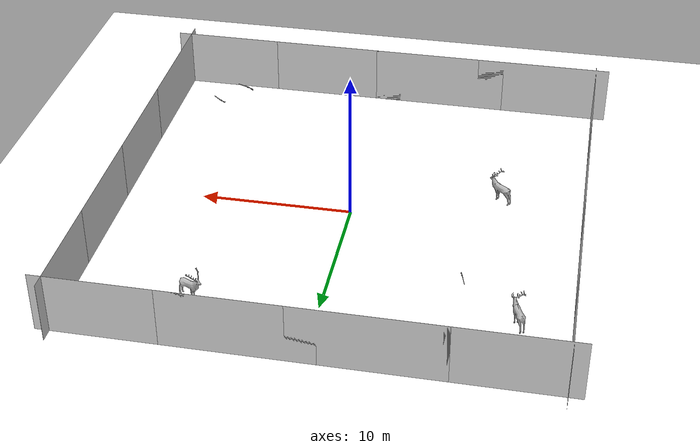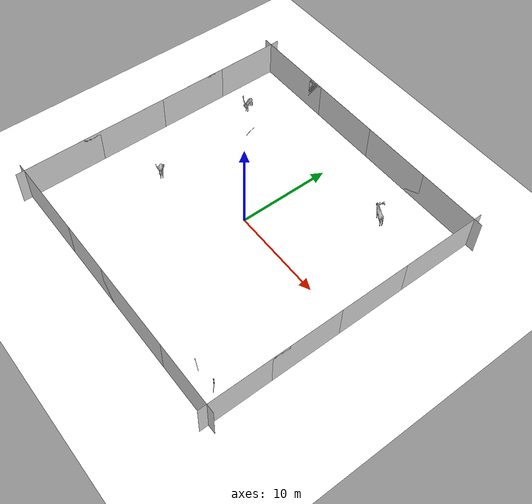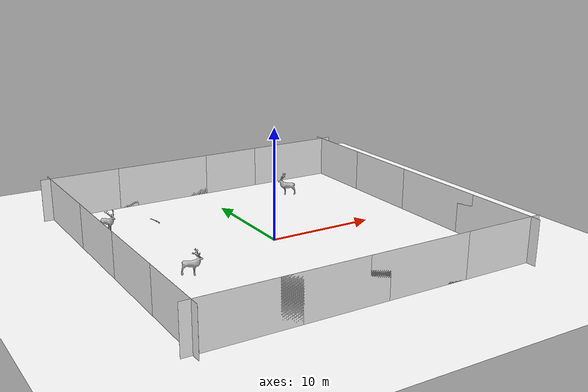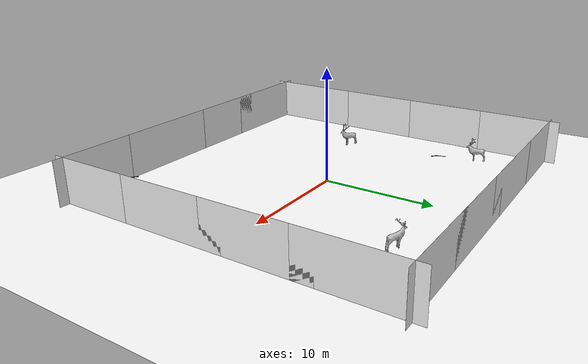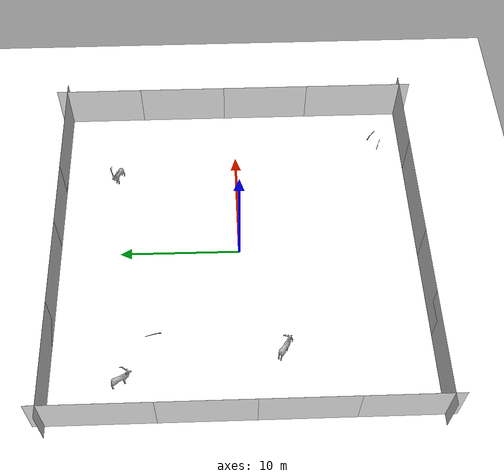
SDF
<sdf version="1.8">
 <world name="world_gen">
  <plugin name="ignition::gazebo::systems::Physics" filename="ignition-gazebo-physics-system"/>
  <plugin name="ignition::gazebo::systems::UserCommands" filename="ignition-gazebo-user-commands-system"/>
  <plugin name="ignition::gazebo::systems::SceneBroadcaster" filename="ignition-gazebo-scene-broadcaster-system"/>
  <plugin name="ignition::gazebo::systems::Contact" filename="ignition-gazebo-contact-system"/>
  <light name="sun" type="directional">
   <cast_shadows>0</cast_shadows>
   <pose>0 0 100 0 0 0</pose>
   <diffuse>0.8 0.8 0.8 1</diffuse>
   <specular>0.8 0.8 0.8 1</specular>
   <direction>-0.5 0.1 -0.9</direction>
   <intensity>5</intensity>
  </light>
  <gravity>0 0 -9.81</gravity>
  <magnetic_field>6e-06 2.3e-05 -4.2e-05</magnetic_field>
  <atmosphere type="adiabatic"/>
  <physics name="default_physics" type="ignored">
   <max_step_size>0.01</max_step_size>
   <real_time_factor>1</real_time_factor>
   <real_time_update_rate>100</real_time_update_rate>
  </physics>
  <scene>
   <ambient>1 1 1 1</ambient>
   <background>0.6 0.8 1.0 1</background>
   <shadows>0</shadows>
   <grid>0</grid>
  </scene>
  <spherical_coordinates>
   <latitude_deg>0.0</latitude_deg>
   <longitude_deg>0.0</longitude_deg>
   <elevation>10.0</elevation>
   <heading_deg>0</heading_deg>
   <surface_model>EARTH_WGS84</surface_model>
  </spherical_coordinates>
  <include>
   <uri>model://gun</uri>
   <name>Gun_1</name>
   <pose>10.4 -12.9 1 0 0 7.48</pose>
   <static>true</static>
  </include>
  <include><uri>model://gun</uri><name>Gun_2</name><pose>-8.2 7 1 0 0 3.41</pose><static>true</static></include>
  <include>
   <uri>model://deer</uri>
   <name>deer_1</name>
   <pose>-9.6 -3.2 0 0 0 4.12</pose>
   <static>true</static>
  </include>
  <include>
   <uri>model://deer</uri>
   <name>deer_2</name>
   <pose>7.9 10.4 0 0 0 1.12</pose>
   <static>true</static>
  </include>
  <include>
   <uri>model://deer</uri>
   <name>deer_3</name>
   <pose>-11.8 9.5 0 0 0 3.57</pose>
   <static>true</static>
  </include>
  <include>
   <uri>model://gun</uri>
   <name>Gun_3</name>
   <pose>12.3 -12.7 0.01 0 1.57 0.85</pose>
   <static>true</static>
  </include>
  <include><uri>model://forest_plane</uri><name>forest_plane0_0</name></include>
  <include>
   <uri>model://forest_wall</uri>
   <name>forest_wall_top_0</name>
   <pose>-11.250 15.000 2.000 1.570796 0 0</pose>
   <static>true</static>
  </include>
  <include>
   <uri>model://forest_wall</uri>
   <name>forest_wall_bottom_0</name>
   <pose>-11.250 -15.000 2.000 1.570796 0 3.141592653589793</pose>
   <static>true</static>
  </include>
  <include>
   <uri>model://forest_wall</uri>
   <name>forest_wall_top_1</name>
   <pose>-3.750 15.000 2.000 1.570796 0 0</pose>
   <static>true</static>
  </include>
  <include>
   <uri>model://forest_wall</uri>
   <name>forest_wall_bottom_1</name>
   <pose>-3.750 -15.000 2.000 1.570796 0 3.141592653589793</pose>
   <static>true</static>
  </include>
  <include>
   <uri>model://forest_wall</uri>
   <name>forest_wall_top_2</name>
   <pose>3.750 15.000 2.000 1.570796 0 0</pose>
   <static>true</static>
  </include>
  <include>
   <uri>model://forest_wall</uri>
   <name>forest_wall_bottom_2</name>
   <pose>3.750 -15.000 2.000 1.570796 0 3.141592653589793</pose>
   <static>true</static>
  </include>
  <include>
   <uri>model://forest_wall</uri>
   <name>forest_wall_top_3</name>
   <pose>11.250 15.000 2.000 1.570796 0 0</pose>
   <static>true</static>
  </include>
  <include>
   <uri>model://forest_wall</uri>
   <name>forest_wall_bottom_3</name>
   <pose>11.250 -15.000 2.000 1.570796 0 3.141592653589793</pose>
   <static>true</static>
  </include>
  <include>
   <uri>model://forest_wall</uri>
   <name>forest_wall_right_0</name>
   <pose>15.000 -11.250 2.000 1.570796 0 -1.570796</pose>
   <static>true</static>
  </include>
  <include>
   <uri>model://forest_wall</uri>
   <name>forest_wall_left_0</name>
   <pose>-15.000 -11.250 2.000 1.570796 0 1.570796</pose>
   <static>true</static>
  </include>
  <include>
   <uri>model://forest_wall</uri>
   <name>forest_wall_right_1</name>
   <pose>15.000 -3.750 2.000 1.570796 0 -1.570796</pose>
   <static>true</static>
  </include>
  <include>
   <uri>model://forest_wall</uri>
   <name>forest_wall_left_1</name>
   <pose>-15.000 -3.750 2.000 1.570796 0 1.570796</pose>
   <static>true</static>
  </include>
  <include>
   <uri>model://forest_wall</uri>
   <name>forest_wall_right_2</name>
   <pose>15.000 3.750 2.000 1.570796 0 -1.570796</pose>
   <static>true</static>
  </include>
  <include>
   <uri>model://forest_wall</uri>
   <name>forest_wall_left_2</name>
   <pose>-15.000 3.750 2.000 1.570796 0 1.570796</pose>
   <static>true</static>
  </include>
  <include>
   <uri>model://forest_wall</uri>
   <name>forest_wall_right_3</name>
   <pose>15.000 11.250 2.000 1.570796 0 -1.570796</pose>
   <static>true</static>
  </include>
  <include>
   <uri>model://forest_wall</uri>
   <name>forest_wall_left_3</name>
   <pose>-15.000 11.250 2.000 1.570796 0 1.570796</pose>
   <static>true</static>
  </include>
  <model name="seed_marker">
   <static>true</static>
   <link name="seed">
    <visual name="txt"><geometry><box><size>0.001 0.001 0.001</size></box></geometry></visual>
   </link>
  </model>
 </world>
</sdf>

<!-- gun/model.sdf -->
<sdf version="1.6">
  <model name="gun">
    <static>true</static>
    <link name="link">
      <!-- Thermal override visual for thermal camera -->
      <visual name="heat_mesh">
        <geometry>
          <mesh>
            <uri>model://gun/meshes/gun.obj</uri>
            <scale>1 1 1</scale>
          </mesh>
        </geometry>
        <material>
          <ambient>0 0 0 0</ambient>
          <diffuse>0 0 0 0</diffuse>
          <specular>0 0 0 0</specular>
          <transparency>1.0</transparency>
        </material>
        <plugin filename="ignition-gazebo-thermal-system"
                name="ignition::gazebo::systems::Thermal">
          <temperature>323.15</temperature>
          <emissivity>0.95</emissivity>
        </plugin>
      </visual>
      <visual name="visual">
        <geometry>
          <mesh>
            <uri>model://gun/meshes/gun.obj</uri>
          </mesh>
        </geometry>
        <plugin filename="ignition-gazebo-thermal-system"
                name="ignition::gazebo::systems::Thermal">
          <temperature>300.15</temperature>
          <emissivity>0.95</emissivity>
        </plugin>
      </visual>

      <collision name="collision">
        <geometry>
          <mesh><uri>model://gun/meshes/gun.stl</uri></mesh>
        </geometry>
      </collision>
    </link>
  </model>
</sdf>

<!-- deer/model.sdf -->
<sdf version="1.6">
  <model name="deer">
    <static>true</static>
    <link name="link">
      <!-- Thermal override visual for d">thermal camera -->
      <visual name="visual">
        <geometry>
          <mesh>
            <uri>model://deer/meshes/deer.obj</uri>
          </mesh>
        </geometry>
        <plugin filename="ignition-gazebo-thermal-system"
                name="ignition::gazebo::systems::Thermal">
          <temperature>313.15</temperature>
          <emissivity>0.95</emissivity>
        </plugin>
      </visual>

      <collision name="collision">
        <geometry>
          <mesh><uri>model://deer/meshes/deer.stl</uri></mesh>
        </geometry>
      </collision>
    </link>
  </model>
</sdf>

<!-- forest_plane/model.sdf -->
<sdf version="1.7">
<model name="grass_plane">
    <static>true</static>
    <link name="link">
        <collision name="collision">
            <geometry>
            <box>
                <normal>0 0 1</normal>
                <size>50 50 0.01</size>
            </box>
            </geometry>
        </collision>
        <visual name="visual">
            <cast_shadows>false</cast_shadows>
            <geometry>
            <plane>
                <normal>0 0 1</normal>
                <size>50 50</size>
            </plane>
            </geometry>
            <material>
                <ambient>1.0 1.0 1.0 1</ambient>
                <diffuse>1.0 1.0 1.0 1</diffuse>
                <pbr>
                    <metal>
                    <albedo_map>
                        model://forest_plane/materials/textures/forest_overhead.png
                    </albedo_map>
                    </metal>
                </pbr>
            </material>
        <plugin filename="ignition-gazebo-thermal-system"
                name="ignition::gazebo::systems::Thermal">
          <temperature>300.15</temperature>
          <emissivity>0.95</emissivity>
        </plugin>
        </visual>
    </link>
</model>
</sdf>

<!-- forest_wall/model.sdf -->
<sdf version="1.7">
<model name="forest_wall">
    <static>true</static>
    <link name="link">
        <thermal>
            <temperature>300.15</temperature>
        </thermal>
        <collision name="collision">
            <geometry>
            <box>
                <normal>0 0 1</normal>
                <size>9.32 4 0.01</size>
            </box>
            </geometry>
        </collision>
        <visual name="visual">
            <cast_shadows>false</cast_shadows>
            <geometry>
            <plane>
                <normal>0 0 1</normal>
                <size>9.32 4</size>
            </plane>
            </geometry>
            <material>
                <diffuse>1.0 1.0 1.0 1</diffuse>
                <pbr>
                    <metal>
                    <albedo_map>
                        model://forest_wall/materials/textures/forest_wall_transparent.png
                    </albedo_map>
                    </metal>
                </pbr>
                <double_sided>true</double_sided>
            </material>
        </visual>
    </link>
</model>
</sdf>
